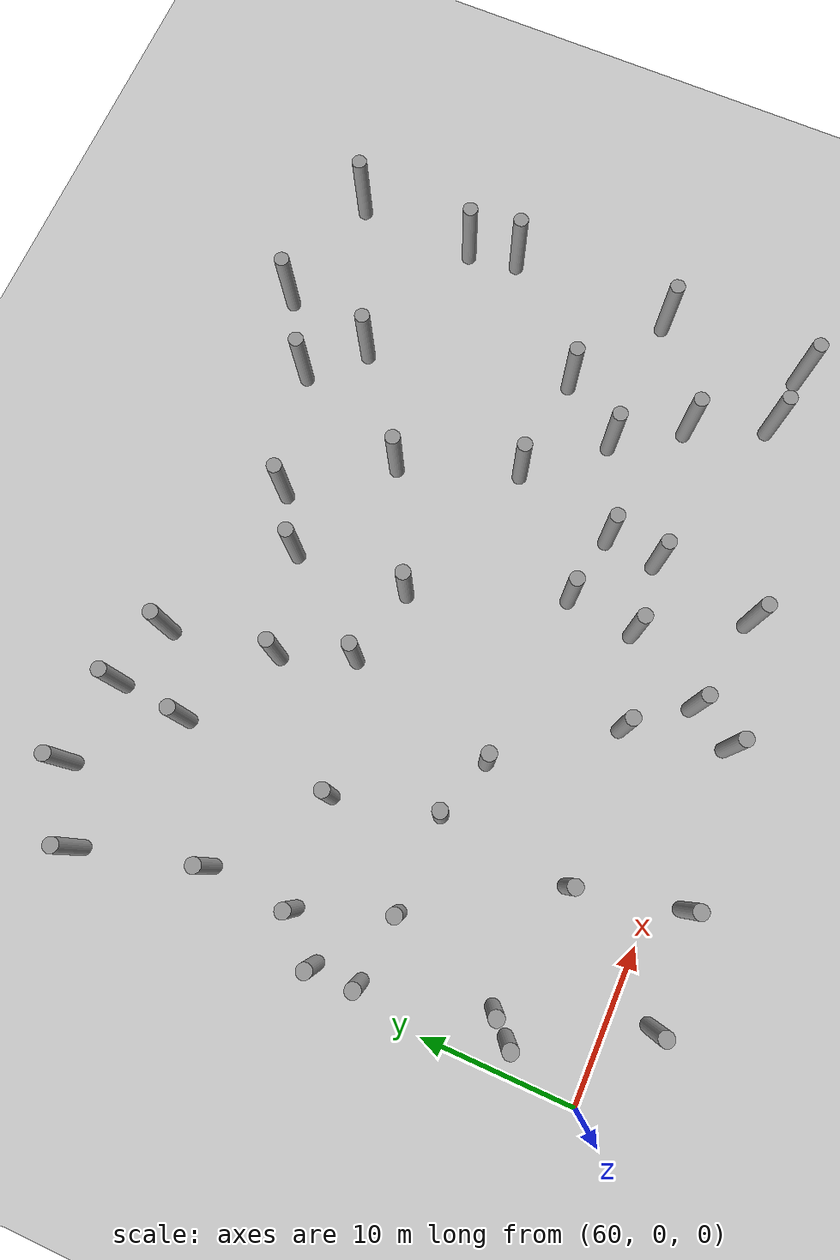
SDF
<sdf version="1.5">
 <world name="circle">
  <model name="ground">
   <static>1</static>
   <link name="link">
    <collision name="collision">
     <geometry><plane><normal>0 0 1</normal><size>100 100</size></plane></geometry>
     <surface><friction><ode><mu>100</mu><mu2>50</mu2></ode></friction></surface>
    </collision>
    <visual name="visual">
     <cast_shadows>0</cast_shadows>
     <geometry><plane><normal>0 0 1</normal><size>100 100</size></plane></geometry>
     <material>
      <script><uri>file://media/materials/scripts/gazebo.material</uri><name>Gazebo/Grey</name></script>
     </material>
    </visual>
    <velocity_decay><linear>0</linear><angular>0</angular></velocity_decay>
   </link>
  </model>
  <model name="unit_cylinder_91">
   <pose>62.0739486632 5.33810085154 3 3e-06 4e-06 -0</pose>
   <static>1</static>
   <self_collide>1</self_collide>
   <link name="link">
    <inertial>
     <mass>1</mass>
     <inertia><ixx>0.145833</ixx><ixy>0</ixy><ixz>0</ixz><iyy>0.145833</iyy><iyz>0</iyz><izz>0.125</izz></inertia>
    </inertial>
    <collision name="collision">
     <geometry><cylinder><radius>0.5</radius><length>6</length></cylinder></geometry>
    </collision>
    <visual name="visual">
     <geometry><cylinder><radius>0.5</radius><length>6</length></cylinder></geometry>
     <material>
      <script><name>Gazebo/Grey</name><uri>file://media/materials/scripts/gazebo.material</uri></script>
     </material>
    </visual>
    <collision name="cyl_collision">
     <geometry><cylinder><radius>0.5</radius><length>6</length></cylinder></geometry>
    </collision>
    <sensor name="my_contact" type="contact">
     <contact><collision>cyl_collision</collision></contact>
     <update_rate>5</update_rate>
    </sensor>
   </link>
  </model>
  <model name="unit_cylinder_92">
   <pose>61.5560781743 14.6359444511 3 3e-06 4e-06 -0</pose>
   <static>1</static>
   <self_collide>1</self_collide>
   <link name="link">
    <inertial>
     <mass>1</mass>
     <inertia><ixx>0.145833</ixx><ixy>0</ixy><ixz>0</ixz><iyy>0.145833</iyy><iyz>0</iyz><izz>0.125</izz></inertia>
    </inertial>
    <collision name="collision">
     <geometry><cylinder><radius>0.5</radius><length>6</length></cylinder></geometry>
    </collision>
    <visual name="visual">
     <geometry><cylinder><radius>0.5</radius><length>6</length></cylinder></geometry>
     <material>
      <script><name>Gazebo/Grey</name><uri>file://media/materials/scripts/gazebo.material</uri></script>
     </material>
    </visual>
    <collision name="cyl_collision">
     <geometry><cylinder><radius>0.5</radius><length>6</length></cylinder></geometry>
    </collision>
    <sensor name="my_contact" type="contact">
     <contact><collision>cyl_collision</collision></contact>
     <update_rate>5</update_rate>
    </sensor>
   </link>
  </model>
  <model name="unit_cylinder_93">
   <pose>61.432458719 17.5609494254 3 3e-06 4e-06 -0</pose>
   <static>1</static>
   <self_collide>1</self_collide>
   <link name="link">
    <inertial>
     <mass>1</mass>
     <inertia><ixx>0.145833</ixx><ixy>0</ixy><ixz>0</ixz><iyy>0.145833</iyy><iyz>0</iyz><izz>0.125</izz></inertia>
    </inertial>
    <collision name="collision">
     <geometry><cylinder><radius>0.5</radius><length>6</length></cylinder></geometry>
    </collision>
    <visual name="visual">
     <geometry><cylinder><radius>0.5</radius><length>6</length></cylinder></geometry>
     <material>
      <script><name>Gazebo/Grey</name><uri>file://media/materials/scripts/gazebo.material</uri></script>
     </material>
    </visual>
    <collision name="cyl_collision">
     <geometry><cylinder><radius>0.5</radius><length>6</length></cylinder></geometry>
    </collision>
    <sensor name="my_contact" type="contact">
     <contact><collision>cyl_collision</collision></contact>
     <update_rate>5</update_rate>
    </sensor>
   </link>
  </model>
  <model name="unit_cylinder_95">
   <pose>61.9481817668 33.8716641692 3 3e-06 4e-06 -0</pose>
   <static>1</static>
   <self_collide>1</self_collide>
   <link name="link">
    <inertial>
     <mass>1</mass>
     <inertia><ixx>0.145833</ixx><ixy>0</ixy><ixz>0</ixz><iyy>0.145833</iyy><iyz>0</iyz><izz>0.125</izz></inertia>
    </inertial>
    <collision name="collision">
     <geometry><cylinder><radius>0.5</radius><length>6</length></cylinder></geometry>
    </collision>
    <visual name="visual">
     <geometry><cylinder><radius>0.5</radius><length>6</length></cylinder></geometry>
     <material>
      <script><name>Gazebo/Grey</name><uri>file://media/materials/scripts/gazebo.material</uri></script>
     </material>
    </visual>
    <collision name="cyl_collision">
     <geometry><cylinder><radius>0.5</radius><length>6</length></cylinder></geometry>
    </collision>
    <sensor name="my_contact" type="contact">
     <contact><collision>cyl_collision</collision></contact>
     <update_rate>5</update_rate>
    </sensor>
   </link>
  </model>
  <model name="unit_cylinder_102">
   <pose>66.0610777973 -2.32905019856 3 3e-06 4e-06 -0</pose>
   <static>1</static>
   <self_collide>1</self_collide>
   <link name="link">
    <inertial>
     <mass>1</mass>
     <inertia><ixx>0.145833</ixx><ixy>0</ixy><ixz>0</ixz><iyy>0.145833</iyy><iyz>0</iyz><izz>0.125</izz></inertia>
    </inertial>
    <collision name="collision">
     <geometry><cylinder><radius>0.5</radius><length>6</length></cylinder></geometry>
    </collision>
    <visual name="visual">
     <geometry><cylinder><radius>0.5</radius><length>6</length></cylinder></geometry>
     <material>
      <script><name>Gazebo/Grey</name><uri>file://media/materials/scripts/gazebo.material</uri></script>
     </material>
    </visual>
    <collision name="cyl_collision">
     <geometry><cylinder><radius>0.5</radius><length>6</length></cylinder></geometry>
    </collision>
    <sensor name="my_contact" type="contact">
     <contact><collision>cyl_collision</collision></contact>
     <update_rate>5</update_rate>
    </sensor>
   </link>
  </model>
  <model name="unit_cylinder_103">
   <pose>63.3626656839 6.70911605019 3 3e-06 4e-06 -0</pose>
   <static>1</static>
   <self_collide>1</self_collide>
   <link name="link">
    <inertial>
     <mass>1</mass>
     <inertia><ixx>0.145833</ixx><ixy>0</ixy><ixz>0</ixz><iyy>0.145833</iyy><iyz>0</iyz><izz>0.125</izz></inertia>
    </inertial>
    <collision name="collision">
     <geometry><cylinder><radius>0.5</radius><length>6</length></cylinder></geometry>
    </collision>
    <visual name="visual">
     <geometry><cylinder><radius>0.5</radius><length>6</length></cylinder></geometry>
     <material>
      <script><name>Gazebo/Grey</name><uri>file://media/materials/scripts/gazebo.material</uri></script>
     </material>
    </visual>
    <collision name="cyl_collision">
     <geometry><cylinder><radius>0.5</radius><length>6</length></cylinder></geometry>
    </collision>
    <sensor name="my_contact" type="contact">
     <contact><collision>cyl_collision</collision></contact>
     <update_rate>5</update_rate>
    </sensor>
   </link>
  </model>
  <model name="unit_cylinder_104">
   <pose>66.1457224315 14.1314867641 3 3e-06 4e-06 -0</pose>
   <static>1</static>
   <self_collide>1</self_collide>
   <link name="link">
    <inertial>
     <mass>1</mass>
     <inertia><ixx>0.145833</ixx><ixy>0</ixy><ixz>0</ixz><iyy>0.145833</iyy><iyz>0</iyz><izz>0.125</izz></inertia>
    </inertial>
    <collision name="collision">
     <geometry><cylinder><radius>0.5</radius><length>6</length></cylinder></geometry>
    </collision>
    <visual name="visual">
     <geometry><cylinder><radius>0.5</radius><length>6</length></cylinder></geometry>
     <material>
      <script><name>Gazebo/Grey</name><uri>file://media/materials/scripts/gazebo.material</uri></script>
     </material>
    </visual>
    <collision name="cyl_collision">
     <geometry><cylinder><radius>0.5</radius><length>6</length></cylinder></geometry>
    </collision>
    <sensor name="my_contact" type="contact">
     <contact><collision>cyl_collision</collision></contact>
     <update_rate>5</update_rate>
    </sensor>
   </link>
  </model>
  <model name="unit_cylinder_105">
   <pose>63.896287241 20.0625460885 3 3e-06 4e-06 -0</pose>
   <static>1</static>
   <self_collide>1</self_collide>
   <link name="link">
    <inertial>
     <mass>1</mass>
     <inertia><ixx>0.145833</ixx><ixy>0</ixy><ixz>0</ixz><iyy>0.145833</iyy><iyz>0</iyz><izz>0.125</izz></inertia>
    </inertial>
    <collision name="collision">
     <geometry><cylinder><radius>0.5</radius><length>6</length></cylinder></geometry>
    </collision>
    <visual name="visual">
     <geometry><cylinder><radius>0.5</radius><length>6</length></cylinder></geometry>
     <material>
      <script><name>Gazebo/Grey</name><uri>file://media/materials/scripts/gazebo.material</uri></script>
     </material>
    </visual>
    <collision name="cyl_collision">
     <geometry><cylinder><radius>0.5</radius><length>6</length></cylinder></geometry>
    </collision>
    <sensor name="my_contact" type="contact">
     <contact><collision>cyl_collision</collision></contact>
     <update_rate>5</update_rate>
    </sensor>
   </link>
  </model>
  <model name="unit_cylinder_106">
   <pose>64.1471792892 25.840303079 3 3e-06 4e-06 -0</pose>
   <static>1</static>
   <self_collide>1</self_collide>
   <link name="link">
    <inertial>
     <mass>1</mass>
     <inertia><ixx>0.145833</ixx><ixy>0</ixy><ixz>0</ixz><iyy>0.145833</iyy><iyz>0</iyz><izz>0.125</izz></inertia>
    </inertial>
    <collision name="collision">
     <geometry><cylinder><radius>0.5</radius><length>6</length></cylinder></geometry>
    </collision>
    <visual name="visual">
     <geometry><cylinder><radius>0.5</radius><length>6</length></cylinder></geometry>
     <material>
      <script><name>Gazebo/Grey</name><uri>file://media/materials/scripts/gazebo.material</uri></script>
     </material>
    </visual>
    <collision name="cyl_collision">
     <geometry><cylinder><radius>0.5</radius><length>6</length></cylinder></geometry>
    </collision>
    <sensor name="my_contact" type="contact">
     <contact><collision>cyl_collision</collision></contact>
     <update_rate>5</update_rate>
    </sensor>
   </link>
  </model>
  <model name="unit_cylinder_107">
   <pose>66.4289884178 36.7921047272 3 3e-06 4e-06 -0</pose>
   <static>1</static>
   <self_collide>1</self_collide>
   <link name="link">
    <inertial>
     <mass>1</mass>
     <inertia><ixx>0.145833</ixx><ixy>0</ixy><ixz>0</ixz><iyy>0.145833</iyy><iyz>0</iyz><izz>0.125</izz></inertia>
    </inertial>
    <collision name="collision">
     <geometry><cylinder><radius>0.5</radius><length>6</length></cylinder></geometry>
    </collision>
    <visual name="visual">
     <geometry><cylinder><radius>0.5</radius><length>6</length></cylinder></geometry>
     <material>
      <script><name>Gazebo/Grey</name><uri>file://media/materials/scripts/gazebo.material</uri></script>
     </material>
    </visual>
    <collision name="cyl_collision">
     <geometry><cylinder><radius>0.5</radius><length>6</length></cylinder></geometry>
    </collision>
    <sensor name="my_contact" type="contact">
     <contact><collision>cyl_collision</collision></contact>
     <update_rate>5</update_rate>
    </sensor>
   </link>
  </model>
  <model name="unit_cylinder_114">
   <pose>73.1602903849 -1.77740981142 3 3e-06 4e-06 -0</pose>
   <static>1</static>
   <self_collide>1</self_collide>
   <link name="link">
    <inertial>
     <mass>1</mass>
     <inertia><ixx>0.145833</ixx><ixy>0</ixy><ixz>0</ixz><iyy>0.145833</iyy><iyz>0</iyz><izz>0.125</izz></inertia>
    </inertial>
    <collision name="collision">
     <geometry><cylinder><radius>0.5</radius><length>6</length></cylinder></geometry>
    </collision>
    <visual name="visual">
     <geometry><cylinder><radius>0.5</radius><length>6</length></cylinder></geometry>
     <material>
      <script><name>Gazebo/Grey</name><uri>file://media/materials/scripts/gazebo.material</uri></script>
     </material>
    </visual>
    <collision name="cyl_collision">
     <geometry><cylinder><radius>0.5</radius><length>6</length></cylinder></geometry>
    </collision>
    <sensor name="my_contact" type="contact">
     <contact><collision>cyl_collision</collision></contact>
     <update_rate>5</update_rate>
    </sensor>
   </link>
  </model>
  <model name="unit_cylinder_115">
   <pose>71.6428215142 5.27796759561 3 3e-06 4e-06 -0</pose>
   <static>1</static>
   <self_collide>1</self_collide>
   <link name="link">
    <inertial>
     <mass>1</mass>
     <inertia><ixx>0.145833</ixx><ixy>0</ixy><ixz>0</ixz><iyy>0.145833</iyy><iyz>0</iyz><izz>0.125</izz></inertia>
    </inertial>
    <collision name="collision">
     <geometry><cylinder><radius>0.5</radius><length>6</length></cylinder></geometry>
    </collision>
    <visual name="visual">
     <geometry><cylinder><radius>0.5</radius><length>6</length></cylinder></geometry>
     <material>
      <script><name>Gazebo/Grey</name><uri>file://media/materials/scripts/gazebo.material</uri></script>
     </material>
    </visual>
    <collision name="cyl_collision">
     <geometry><cylinder><radius>0.5</radius><length>6</length></cylinder></geometry>
    </collision>
    <sensor name="my_contact" type="contact">
     <contact><collision>cyl_collision</collision></contact>
     <update_rate>5</update_rate>
    </sensor>
   </link>
  </model>
  <model name="unit_cylinder_116">
   <pose>72.5387453592 14.0682765784 3 3e-06 4e-06 -0</pose>
   <static>1</static>
   <self_collide>1</self_collide>
   <link name="link">
    <inertial>
     <mass>1</mass>
     <inertia><ixx>0.145833</ixx><ixy>0</ixy><ixz>0</ixz><iyy>0.145833</iyy><iyz>0</iyz><izz>0.125</izz></inertia>
    </inertial>
    <collision name="collision">
     <geometry><cylinder><radius>0.5</radius><length>6</length></cylinder></geometry>
    </collision>
    <visual name="visual">
     <geometry><cylinder><radius>0.5</radius><length>6</length></cylinder></geometry>
     <material>
      <script><name>Gazebo/Grey</name><uri>file://media/materials/scripts/gazebo.material</uri></script>
     </material>
    </visual>
    <collision name="cyl_collision">
     <geometry><cylinder><radius>0.5</radius><length>6</length></cylinder></geometry>
    </collision>
    <sensor name="my_contact" type="contact">
     <contact><collision>cyl_collision</collision></contact>
     <update_rate>5</update_rate>
    </sensor>
   </link>
  </model>
  <model name="unit_cylinder_117">
   <pose>70.9271889235 20.8517003694 3 3e-06 4e-06 -0</pose>
   <static>1</static>
   <self_collide>1</self_collide>
   <link name="link">
    <inertial>
     <mass>1</mass>
     <inertia><ixx>0.145833</ixx><ixy>0</ixy><ixz>0</ixz><iyy>0.145833</iyy><iyz>0</iyz><izz>0.125</izz></inertia>
    </inertial>
    <collision name="collision">
     <geometry><cylinder><radius>0.5</radius><length>6</length></cylinder></geometry>
    </collision>
    <visual name="visual">
     <geometry><cylinder><radius>0.5</radius><length>6</length></cylinder></geometry>
     <material>
      <script><name>Gazebo/Grey</name><uri>file://media/materials/scripts/gazebo.material</uri></script>
     </material>
    </visual>
    <collision name="cyl_collision">
     <geometry><cylinder><radius>0.5</radius><length>6</length></cylinder></geometry>
    </collision>
    <sensor name="my_contact" type="contact">
     <contact><collision>cyl_collision</collision></contact>
     <update_rate>5</update_rate>
    </sensor>
   </link>
  </model>
  <model name="unit_cylinder_118">
   <pose>71.7306951496 31.3040778528 3 3e-06 4e-06 -0</pose>
   <static>1</static>
   <self_collide>1</self_collide>
   <link name="link">
    <inertial>
     <mass>1</mass>
     <inertia><ixx>0.145833</ixx><ixy>0</ixy><ixz>0</ixz><iyy>0.145833</iyy><iyz>0</iyz><izz>0.125</izz></inertia>
    </inertial>
    <collision name="collision">
     <geometry><cylinder><radius>0.5</radius><length>6</length></cylinder></geometry>
    </collision>
    <visual name="visual">
     <geometry><cylinder><radius>0.5</radius><length>6</length></cylinder></geometry>
     <material>
      <script><name>Gazebo/Grey</name><uri>file://media/materials/scripts/gazebo.material</uri></script>
     </material>
    </visual>
    <collision name="cyl_collision">
     <geometry><cylinder><radius>0.5</radius><length>6</length></cylinder></geometry>
    </collision>
    <sensor name="my_contact" type="contact">
     <contact><collision>cyl_collision</collision></contact>
     <update_rate>5</update_rate>
    </sensor>
   </link>
  </model>
  <model name="unit_cylinder_119">
   <pose>72.1649178916 36.1193566209 3 3e-06 4e-06 -0</pose>
   <static>1</static>
   <self_collide>1</self_collide>
   <link name="link">
    <inertial>
     <mass>1</mass>
     <inertia><ixx>0.145833</ixx><ixy>0</ixy><ixz>0</ixz><iyy>0.145833</iyy><iyz>0</iyz><izz>0.125</izz></inertia>
    </inertial>
    <collision name="collision">
     <geometry><cylinder><radius>0.5</radius><length>6</length></cylinder></geometry>
    </collision>
    <visual name="visual">
     <geometry><cylinder><radius>0.5</radius><length>6</length></cylinder></geometry>
     <material>
      <script><name>Gazebo/Grey</name><uri>file://media/materials/scripts/gazebo.material</uri></script>
     </material>
    </visual>
    <collision name="cyl_collision">
     <geometry><cylinder><radius>0.5</radius><length>6</length></cylinder></geometry>
    </collision>
    <sensor name="my_contact" type="contact">
     <contact><collision>cyl_collision</collision></contact>
     <update_rate>5</update_rate>
    </sensor>
   </link>
  </model>
  <model name="unit_cylinder_126">
   <pose>83.4338816202 -0.87176138724 3 3e-06 4e-06 -0</pose>
   <static>1</static>
   <self_collide>1</self_collide>
   <link name="link">
    <inertial>
     <mass>1</mass>
     <inertia><ixx>0.145833</ixx><ixy>0</ixy><ixz>0</ixz><iyy>0.145833</iyy><iyz>0</iyz><izz>0.125</izz></inertia>
    </inertial>
    <collision name="collision">
     <geometry><cylinder><radius>0.5</radius><length>6</length></cylinder></geometry>
    </collision>
    <visual name="visual">
     <geometry><cylinder><radius>0.5</radius><length>6</length></cylinder></geometry>
     <material>
      <script><name>Gazebo/Grey</name><uri>file://media/materials/scripts/gazebo.material</uri></script>
     </material>
    </visual>
    <collision name="cyl_collision">
     <geometry><cylinder><radius>0.5</radius><length>6</length></cylinder></geometry>
    </collision>
    <sensor name="my_contact" type="contact">
     <contact><collision>cyl_collision</collision></contact>
     <update_rate>5</update_rate>
    </sensor>
   </link>
  </model>
  <model name="unit_cylinder_127">
   <pose>81.9904492961 5.69962246221 3 3e-06 4e-06 -0</pose>
   <static>1</static>
   <self_collide>1</self_collide>
   <link name="link">
    <inertial>
     <mass>1</mass>
     <inertia><ixx>0.145833</ixx><ixy>0</ixy><ixz>0</ixz><iyy>0.145833</iyy><iyz>0</iyz><izz>0.125</izz></inertia>
    </inertial>
    <collision name="collision">
     <geometry><cylinder><radius>0.5</radius><length>6</length></cylinder></geometry>
    </collision>
    <visual name="visual">
     <geometry><cylinder><radius>0.5</radius><length>6</length></cylinder></geometry>
     <material>
      <script><name>Gazebo/Grey</name><uri>file://media/materials/scripts/gazebo.material</uri></script>
     </material>
    </visual>
    <collision name="cyl_collision">
     <geometry><cylinder><radius>0.5</radius><length>6</length></cylinder></geometry>
    </collision>
    <sensor name="my_contact" type="contact">
     <contact><collision>cyl_collision</collision></contact>
     <update_rate>5</update_rate>
    </sensor>
   </link>
  </model>
  <model name="unit_cylinder_128">
   <pose>76.7028206165 12.7197313785 3 3e-06 4e-06 -0</pose>
   <static>1</static>
   <self_collide>1</self_collide>
   <link name="link">
    <inertial>
     <mass>1</mass>
     <inertia><ixx>0.145833</ixx><ixy>0</ixy><ixz>0</ixz><iyy>0.145833</iyy><iyz>0</iyz><izz>0.125</izz></inertia>
    </inertial>
    <collision name="collision">
     <geometry><cylinder><radius>0.5</radius><length>6</length></cylinder></geometry>
    </collision>
    <visual name="visual">
     <geometry><cylinder><radius>0.5</radius><length>6</length></cylinder></geometry>
     <material>
      <script><name>Gazebo/Grey</name><uri>file://media/materials/scripts/gazebo.material</uri></script>
     </material>
    </visual>
    <collision name="cyl_collision">
     <geometry><cylinder><radius>0.5</radius><length>6</length></cylinder></geometry>
    </collision>
    <sensor name="my_contact" type="contact">
     <contact><collision>cyl_collision</collision></contact>
     <update_rate>5</update_rate>
    </sensor>
   </link>
  </model>
  <model name="unit_cylinder_129">
   <pose>79.4812826559 23.0179655852 3 3e-06 4e-06 -0</pose>
   <static>1</static>
   <self_collide>1</self_collide>
   <link name="link">
    <inertial>
     <mass>1</mass>
     <inertia><ixx>0.145833</ixx><ixy>0</ixy><ixz>0</ixz><iyy>0.145833</iyy><iyz>0</iyz><izz>0.125</izz></inertia>
    </inertial>
    <collision name="collision">
     <geometry><cylinder><radius>0.5</radius><length>6</length></cylinder></geometry>
    </collision>
    <visual name="visual">
     <geometry><cylinder><radius>0.5</radius><length>6</length></cylinder></geometry>
     <material>
      <script><name>Gazebo/Grey</name><uri>file://media/materials/scripts/gazebo.material</uri></script>
     </material>
    </visual>
    <collision name="cyl_collision">
     <geometry><cylinder><radius>0.5</radius><length>6</length></cylinder></geometry>
    </collision>
    <sensor name="my_contact" type="contact">
     <contact><collision>cyl_collision</collision></contact>
     <update_rate>5</update_rate>
    </sensor>
   </link>
  </model>
  <model name="unit_cylinder_130">
   <pose>77.7314166843 27.6928025117 3 3e-06 4e-06 -0</pose>
   <static>1</static>
   <self_collide>1</self_collide>
   <link name="link">
    <inertial>
     <mass>1</mass>
     <inertia><ixx>0.145833</ixx><ixy>0</ixy><ixz>0</ixz><iyy>0.145833</iyy><iyz>0</iyz><izz>0.125</izz></inertia>
    </inertial>
    <collision name="collision">
     <geometry><cylinder><radius>0.5</radius><length>6</length></cylinder></geometry>
    </collision>
    <visual name="visual">
     <geometry><cylinder><radius>0.5</radius><length>6</length></cylinder></geometry>
     <material>
      <script><name>Gazebo/Grey</name><uri>file://media/materials/scripts/gazebo.material</uri></script>
     </material>
    </visual>
    <collision name="cyl_collision">
     <geometry><cylinder><radius>0.5</radius><length>6</length></cylinder></geometry>
    </collision>
    <sensor name="my_contact" type="contact">
     <contact><collision>cyl_collision</collision></contact>
     <update_rate>5</update_rate>
    </sensor>
   </link>
  </model>
  <model name="unit_cylinder_131">
   <pose>76.5335999706 34.8875090233 3 3e-06 4e-06 -0</pose>
   <static>1</static>
   <self_collide>1</self_collide>
   <link name="link">
    <inertial>
     <mass>1</mass>
     <inertia><ixx>0.145833</ixx><ixy>0</ixy><ixz>0</ixz><iyy>0.145833</iyy><iyz>0</iyz><izz>0.125</izz></inertia>
    </inertial>
    <collision name="collision">
     <geometry><cylinder><radius>0.5</radius><length>6</length></cylinder></geometry>
    </collision>
    <visual name="visual">
     <geometry><cylinder><radius>0.5</radius><length>6</length></cylinder></geometry>
     <material>
      <script><name>Gazebo/Grey</name><uri>file://media/materials/scripts/gazebo.material</uri></script>
     </material>
    </visual>
    <collision name="cyl_collision">
     <geometry><cylinder><radius>0.5</radius><length>6</length></cylinder></geometry>
    </collision>
    <sensor name="my_contact" type="contact">
     <contact><collision>cyl_collision</collision></contact>
     <update_rate>5</update_rate>
    </sensor>
   </link>
  </model>
  <model name="unit_cylinder_138">
   <pose>85.0531737811 2.01897827651 3 3e-06 4e-06 -0</pose>
   <static>1</static>
   <self_collide>1</self_collide>
   <link name="link">
    <inertial>
     <mass>1</mass>
     <inertia><ixx>0.145833</ixx><ixy>0</ixy><ixz>0</ixz><iyy>0.145833</iyy><iyz>0</iyz><izz>0.125</izz></inertia>
    </inertial>
    <collision name="collision">
     <geometry><cylinder><radius>0.5</radius><length>6</length></cylinder></geometry>
    </collision>
    <visual name="visual">
     <geometry><cylinder><radius>0.5</radius><length>6</length></cylinder></geometry>
     <material>
      <script><name>Gazebo/Grey</name><uri>file://media/materials/scripts/gazebo.material</uri></script>
     </material>
    </visual>
    <collision name="cyl_collision">
     <geometry><cylinder><radius>0.5</radius><length>6</length></cylinder></geometry>
    </collision>
    <sensor name="my_contact" type="contact">
     <contact><collision>cyl_collision</collision></contact>
     <update_rate>5</update_rate>
    </sensor>
   </link>
  </model>
  <model name="unit_cylinder_139">
   <pose>88.0748383801 7.24297246957 3 3e-06 4e-06 -0</pose>
   <static>1</static>
   <self_collide>1</self_collide>
   <link name="link">
    <inertial>
     <mass>1</mass>
     <inertia><ixx>0.145833</ixx><ixy>0</ixy><ixz>0</ixz><iyy>0.145833</iyy><iyz>0</iyz><izz>0.125</izz></inertia>
    </inertial>
    <collision name="collision">
     <geometry><cylinder><radius>0.5</radius><length>6</length></cylinder></geometry>
    </collision>
    <visual name="visual">
     <geometry><cylinder><radius>0.5</radius><length>6</length></cylinder></geometry>
     <material>
      <script><name>Gazebo/Grey</name><uri>file://media/materials/scripts/gazebo.material</uri></script>
     </material>
    </visual>
    <collision name="cyl_collision">
     <geometry><cylinder><radius>0.5</radius><length>6</length></cylinder></geometry>
    </collision>
    <sensor name="my_contact" type="contact">
     <contact><collision>cyl_collision</collision></contact>
     <update_rate>5</update_rate>
    </sensor>
   </link>
  </model>
  <model name="unit_cylinder_140">
   <pose>88.6255633518 11.8855441214 3 3e-06 4e-06 -0</pose>
   <static>1</static>
   <self_collide>1</self_collide>
   <link name="link">
    <inertial>
     <mass>1</mass>
     <inertia><ixx>0.145833</ixx><ixy>0</ixy><ixz>0</ixz><iyy>0.145833</iyy><iyz>0</iyz><izz>0.125</izz></inertia>
    </inertial>
    <collision name="collision">
     <geometry><cylinder><radius>0.5</radius><length>6</length></cylinder></geometry>
    </collision>
    <visual name="visual">
     <geometry><cylinder><radius>0.5</radius><length>6</length></cylinder></geometry>
     <material>
      <script><name>Gazebo/Grey</name><uri>file://media/materials/scripts/gazebo.material</uri></script>
     </material>
    </visual>
    <collision name="cyl_collision">
     <geometry><cylinder><radius>0.5</radius><length>6</length></cylinder></geometry>
    </collision>
    <sensor name="my_contact" type="contact">
     <contact><collision>cyl_collision</collision></contact>
     <update_rate>5</update_rate>
    </sensor>
   </link>
  </model>
  <model name="unit_cylinder_141">
   <pose>84.8015720772 21.8278021756 3 3e-06 4e-06 -0</pose>
   <static>1</static>
   <self_collide>1</self_collide>
   <link name="link">
    <inertial>
     <mass>1</mass>
     <inertia><ixx>0.145833</ixx><ixy>0</ixy><ixz>0</ixz><iyy>0.145833</iyy><iyz>0</iyz><izz>0.125</izz></inertia>
    </inertial>
    <collision name="collision">
     <geometry><cylinder><radius>0.5</radius><length>6</length></cylinder></geometry>
    </collision>
    <visual name="visual">
     <geometry><cylinder><radius>0.5</radius><length>6</length></cylinder></geometry>
     <material>
      <script><name>Gazebo/Grey</name><uri>file://media/materials/scripts/gazebo.material</uri></script>
     </material>
    </visual>
    <collision name="cyl_collision">
     <geometry><cylinder><radius>0.5</radius><length>6</length></cylinder></geometry>
    </collision>
    <sensor name="my_contact" type="contact">
     <contact><collision>cyl_collision</collision></contact>
     <update_rate>5</update_rate>
    </sensor>
   </link>
  </model>
  <model name="unit_cylinder_142">
   <pose>84.4582404432 29.581830989 3 3e-06 4e-06 -0</pose>
   <static>1</static>
   <self_collide>1</self_collide>
   <link name="link">
    <inertial>
     <mass>1</mass>
     <inertia><ixx>0.145833</ixx><ixy>0</ixy><ixz>0</ixz><iyy>0.145833</iyy><iyz>0</iyz><izz>0.125</izz></inertia>
    </inertial>
    <collision name="collision">
     <geometry><cylinder><radius>0.5</radius><length>6</length></cylinder></geometry>
    </collision>
    <visual name="visual">
     <geometry><cylinder><radius>0.5</radius><length>6</length></cylinder></geometry>
     <material>
      <script><name>Gazebo/Grey</name><uri>file://media/materials/scripts/gazebo.material</uri></script>
     </material>
    </visual>
    <collision name="cyl_collision">
     <geometry><cylinder><radius>0.5</radius><length>6</length></cylinder></geometry>
    </collision>
    <sensor name="my_contact" type="contact">
     <contact><collision>cyl_collision</collision></contact>
     <update_rate>5</update_rate>
    </sensor>
   </link>
  </model>
  <model name="unit_cylinder_143">
   <pose>87.9756513296 32.0415950627 3 3e-06 4e-06 -0</pose>
   <static>1</static>
   <self_collide>1</self_collide>
   <link name="link">
    <inertial>
     <mass>1</mass>
     <inertia><ixx>0.145833</ixx><ixy>0</ixy><ixz>0</ixz><iyy>0.145833</iyy><iyz>0</iyz><izz>0.125</izz></inertia>
    </inertial>
    <collision name="collision">
     <geometry><cylinder><radius>0.5</radius><length>6</length></cylinder></geometry>
    </collision>
    <visual name="visual">
     <geometry><cylinder><radius>0.5</radius><length>6</length></cylinder></geometry>
     <material>
      <script><name>Gazebo/Grey</name><uri>file://media/materials/scripts/gazebo.material</uri></script>
     </material>
    </visual>
    <collision name="cyl_collision">
     <geometry><cylinder><radius>0.5</radius><length>6</length></cylinder></geometry>
    </collision>
    <sensor name="my_contact" type="contact">
     <contact><collision>cyl_collision</collision></contact>
     <update_rate>5</update_rate>
    </sensor>
   </link>
  </model>
  <model name="unit_cylinder_150">
   <pose>91.6800630087 0.586380976315 3 3e-06 4e-06 -0</pose>
   <static>1</static>
   <self_collide>1</self_collide>
   <link name="link">
    <inertial>
     <mass>1</mass>
     <inertia><ixx>0.145833</ixx><ixy>0</ixy><ixz>0</ixz><iyy>0.145833</iyy><iyz>0</iyz><izz>0.125</izz></inertia>
    </inertial>
    <collision name="collision">
     <geometry><cylinder><radius>0.5</radius><length>6</length></cylinder></geometry>
    </collision>
    <visual name="visual">
     <geometry><cylinder><radius>0.5</radius><length>6</length></cylinder></geometry>
     <material>
      <script><name>Gazebo/Grey</name><uri>file://media/materials/scripts/gazebo.material</uri></script>
     </material>
    </visual>
    <collision name="cyl_collision">
     <geometry><cylinder><radius>0.5</radius><length>6</length></cylinder></geometry>
    </collision>
    <sensor name="my_contact" type="contact">
     <contact><collision>cyl_collision</collision></contact>
     <update_rate>5</update_rate>
    </sensor>
   </link>
  </model>
  <model name="unit_cylinder_151">
   <pose>93.0436508442 7.5511929484 3 3e-06 4e-06 -0</pose>
   <static>1</static>
   <self_collide>1</self_collide>
   <link name="link">
    <inertial>
     <mass>1</mass>
     <inertia><ixx>0.145833</ixx><ixy>0</ixy><ixz>0</ixz><iyy>0.145833</iyy><iyz>0</iyz><izz>0.125</izz></inertia>
    </inertial>
    <collision name="collision">
     <geometry><cylinder><radius>0.5</radius><length>6</length></cylinder></geometry>
    </collision>
    <visual name="visual">
     <geometry><cylinder><radius>0.5</radius><length>6</length></cylinder></geometry>
     <material>
      <script><name>Gazebo/Grey</name><uri>file://media/materials/scripts/gazebo.material</uri></script>
     </material>
    </visual>
    <collision name="cyl_collision">
     <geometry><cylinder><radius>0.5</radius><length>6</length></cylinder></geometry>
    </collision>
    <sensor name="my_contact" type="contact">
     <contact><collision>cyl_collision</collision></contact>
     <update_rate>5</update_rate>
    </sensor>
   </link>
  </model>
  <model name="unit_cylinder_152">
   <pose>93.3881599831 11.0714645897 3 3e-06 4e-06 -0</pose>
   <static>1</static>
   <self_collide>1</self_collide>
   <link name="link">
    <inertial>
     <mass>1</mass>
     <inertia><ixx>0.145833</ixx><ixy>0</ixy><ixz>0</ixz><iyy>0.145833</iyy><iyz>0</iyz><izz>0.125</izz></inertia>
    </inertial>
    <collision name="collision">
     <geometry><cylinder><radius>0.5</radius><length>6</length></cylinder></geometry>
    </collision>
    <visual name="visual">
     <geometry><cylinder><radius>0.5</radius><length>6</length></cylinder></geometry>
     <material>
      <script><name>Gazebo/Grey</name><uri>file://media/materials/scripts/gazebo.material</uri></script>
     </material>
    </visual>
    <collision name="cyl_collision">
     <geometry><cylinder><radius>0.5</radius><length>6</length></cylinder></geometry>
    </collision>
    <sensor name="my_contact" type="contact">
     <contact><collision>cyl_collision</collision></contact>
     <update_rate>5</update_rate>
    </sensor>
   </link>
  </model>
  <model name="unit_cylinder_153">
   <pose>95.4701806106 18.1295545116 3 3e-06 4e-06 -0</pose>
   <static>1</static>
   <self_collide>1</self_collide>
   <link name="link">
    <inertial>
     <mass>1</mass>
     <inertia><ixx>0.145833</ixx><ixy>0</ixy><ixz>0</ixz><iyy>0.145833</iyy><iyz>0</iyz><izz>0.125</izz></inertia>
    </inertial>
    <collision name="collision">
     <geometry><cylinder><radius>0.5</radius><length>6</length></cylinder></geometry>
    </collision>
    <visual name="visual">
     <geometry><cylinder><radius>0.5</radius><length>6</length></cylinder></geometry>
     <material>
      <script><name>Gazebo/Grey</name><uri>file://media/materials/scripts/gazebo.material</uri></script>
     </material>
    </visual>
    <collision name="cyl_collision">
     <geometry><cylinder><radius>0.5</radius><length>6</length></cylinder></geometry>
    </collision>
    <sensor name="my_contact" type="contact">
     <contact><collision>cyl_collision</collision></contact>
     <update_rate>5</update_rate>
    </sensor>
   </link>
  </model>
  <model name="unit_cylinder_154">
   <pose>92.6448180383 25.9881389108 3 3e-06 4e-06 -0</pose>
   <static>1</static>
   <self_collide>1</self_collide>
   <link name="link">
    <inertial>
     <mass>1</mass>
     <inertia><ixx>0.145833</ixx><ixy>0</ixy><ixz>0</ixz><iyy>0.145833</iyy><iyz>0</iyz><izz>0.125</izz></inertia>
    </inertial>
    <collision name="collision">
     <geometry><cylinder><radius>0.5</radius><length>6</length></cylinder></geometry>
    </collision>
    <visual name="visual">
     <geometry><cylinder><radius>0.5</radius><length>6</length></cylinder></geometry>
     <material>
      <script><name>Gazebo/Grey</name><uri>file://media/materials/scripts/gazebo.material</uri></script>
     </material>
    </visual>
    <collision name="cyl_collision">
     <geometry><cylinder><radius>0.5</radius><length>6</length></cylinder></geometry>
    </collision>
    <sensor name="my_contact" type="contact">
     <contact><collision>cyl_collision</collision></contact>
     <update_rate>5</update_rate>
    </sensor>
   </link>
  </model>
  <model name="unit_cylinder_155">
   <pose>96.3656527469 34.4711664489 3 3e-06 4e-06 -0</pose>
   <static>1</static>
   <self_collide>1</self_collide>
   <link name="link">
    <inertial>
     <mass>1</mass>
     <inertia><ixx>0.145833</ixx><ixy>0</ixy><ixz>0</ixz><iyy>0.145833</iyy><iyz>0</iyz><izz>0.125</izz></inertia>
    </inertial>
    <collision name="collision">
     <geometry><cylinder><radius>0.5</radius><length>6</length></cylinder></geometry>
    </collision>
    <visual name="visual">
     <geometry><cylinder><radius>0.5</radius><length>6</length></cylinder></geometry>
     <material>
      <script><name>Gazebo/Grey</name><uri>file://media/materials/scripts/gazebo.material</uri></script>
     </material>
    </visual>
    <collision name="cyl_collision">
     <geometry><cylinder><radius>0.5</radius><length>6</length></cylinder></geometry>
    </collision>
    <sensor name="my_contact" type="contact">
     <contact><collision>cyl_collision</collision></contact>
     <update_rate>5</update_rate>
    </sensor>
   </link>
  </model>
  <model name="unit_cylinder_163">
   <pose>102.72513353 8.95363633406 3 3e-06 4e-06 -0</pose>
   <static>1</static>
   <self_collide>1</self_collide>
   <link name="link">
    <inertial>
     <mass>1</mass>
     <inertia><ixx>0.145833</ixx><ixy>0</ixy><ixz>0</ixz><iyy>0.145833</iyy><iyz>0</iyz><izz>0.125</izz></inertia>
    </inertial>
    <collision name="collision">
     <geometry><cylinder><radius>0.5</radius><length>6</length></cylinder></geometry>
    </collision>
    <visual name="visual">
     <geometry><cylinder><radius>0.5</radius><length>6</length></cylinder></geometry>
     <material>
      <script><name>Gazebo/Grey</name><uri>file://media/materials/scripts/gazebo.material</uri></script>
     </material>
    </visual>
    <collision name="cyl_collision">
     <geometry><cylinder><radius>0.5</radius><length>6</length></cylinder></geometry>
    </collision>
    <sensor name="my_contact" type="contact">
     <contact><collision>cyl_collision</collision></contact>
     <update_rate>5</update_rate>
    </sensor>
   </link>
  </model>
  <model name="unit_cylinder_164">
   <pose>99.7690029097 13.3584957123 3 3e-06 4e-06 -0</pose>
   <static>1</static>
   <self_collide>1</self_collide>
   <link name="link">
    <inertial>
     <mass>1</mass>
     <inertia><ixx>0.145833</ixx><ixy>0</ixy><ixz>0</ixz><iyy>0.145833</iyy><iyz>0</iyz><izz>0.125</izz></inertia>
    </inertial>
    <collision name="collision">
     <geometry><cylinder><radius>0.5</radius><length>6</length></cylinder></geometry>
    </collision>
    <visual name="visual">
     <geometry><cylinder><radius>0.5</radius><length>6</length></cylinder></geometry>
     <material>
      <script><name>Gazebo/Grey</name><uri>file://media/materials/scripts/gazebo.material</uri></script>
     </material>
    </visual>
    <collision name="cyl_collision">
     <geometry><cylinder><radius>0.5</radius><length>6</length></cylinder></geometry>
    </collision>
    <sensor name="my_contact" type="contact">
     <contact><collision>cyl_collision</collision></contact>
     <update_rate>5</update_rate>
    </sensor>
   </link>
  </model>
  <model name="unit_cylinder_165">
   <pose>102.8931837 17.5130204523 3 3e-06 4e-06 -0</pose>
   <static>1</static>
   <self_collide>1</self_collide>
   <link name="link">
    <inertial>
     <mass>1</mass>
     <inertia><ixx>0.145833</ixx><ixy>0</ixy><ixz>0</ixz><iyy>0.145833</iyy><iyz>0</iyz><izz>0.125</izz></inertia>
    </inertial>
    <collision name="collision">
     <geometry><cylinder><radius>0.5</radius><length>6</length></cylinder></geometry>
    </collision>
    <visual name="visual">
     <geometry><cylinder><radius>0.5</radius><length>6</length></cylinder></geometry>
     <material>
      <script><name>Gazebo/Grey</name><uri>file://media/materials/scripts/gazebo.material</uri></script>
     </material>
    </visual>
    <collision name="cyl_collision">
     <geometry><cylinder><radius>0.5</radius><length>6</length></cylinder></geometry>
    </collision>
    <sensor name="my_contact" type="contact">
     <contact><collision>cyl_collision</collision></contact>
     <update_rate>5</update_rate>
    </sensor>
   </link>
  </model>
  <model name="unit_cylinder_166">
   <pose>99.5752639945 31.2358524043 3 3e-06 4e-06 -0</pose>
   <static>1</static>
   <self_collide>1</self_collide>
   <link name="link">
    <inertial>
     <mass>1</mass>
     <inertia><ixx>0.145833</ixx><ixy>0</ixy><ixz>0</ixz><iyy>0.145833</iyy><iyz>0</iyz><izz>0.125</izz></inertia>
    </inertial>
    <collision name="collision">
     <geometry><cylinder><radius>0.5</radius><length>6</length></cylinder></geometry>
    </collision>
    <visual name="visual">
     <geometry><cylinder><radius>0.5</radius><length>6</length></cylinder></geometry>
     <material>
      <script><name>Gazebo/Grey</name><uri>file://media/materials/scripts/gazebo.material</uri></script>
     </material>
    </visual>
    <collision name="cyl_collision">
     <geometry><cylinder><radius>0.5</radius><length>6</length></cylinder></geometry>
    </collision>
    <sensor name="my_contact" type="contact">
     <contact><collision>cyl_collision</collision></contact>
     <update_rate>5</update_rate>
    </sensor>
   </link>
  </model>
  <model name="unit_cylinder_167">
   <pose>101.229276495 37.7875971921 3 3e-06 4e-06 -0</pose>
   <static>1</static>
   <self_collide>1</self_collide>
   <link name="link">
    <inertial>
     <mass>1</mass>
     <inertia><ixx>0.145833</ixx><ixy>0</ixy><ixz>0</ixz><iyy>0.145833</iyy><iyz>0</iyz><izz>0.125</izz></inertia>
    </inertial>
    <collision name="collision">
     <geometry><cylinder><radius>0.5</radius><length>6</length></cylinder></geometry>
    </collision>
    <visual name="visual">
     <geometry><cylinder><radius>0.5</radius><length>6</length></cylinder></geometry>
     <material>
      <script><name>Gazebo/Grey</name><uri>file://media/materials/scripts/gazebo.material</uri></script>
     </material>
    </visual>
    <collision name="cyl_collision">
     <geometry><cylinder><radius>0.5</radius><length>6</length></cylinder></geometry>
    </collision>
    <sensor name="my_contact" type="contact">
     <contact><collision>cyl_collision</collision></contact>
     <update_rate>5</update_rate>
    </sensor>
   </link>
  </model>
  <model name="unit_cylinder_174">
   <pose>109.306100726 3.18491840912 3 3e-06 4e-06 -0</pose>
   <static>1</static>
   <self_collide>1</self_collide>
   <link name="link">
    <inertial>
     <mass>1</mass>
     <inertia><ixx>0.145833</ixx><ixy>0</ixy><ixz>0</ixz><iyy>0.145833</iyy><iyz>0</iyz><izz>0.125</izz></inertia>
    </inertial>
    <collision name="collision">
     <geometry><cylinder><radius>0.5</radius><length>6</length></cylinder></geometry>
    </collision>
    <visual name="visual">
     <geometry><cylinder><radius>0.5</radius><length>6</length></cylinder></geometry>
     <material>
      <script><name>Gazebo/Grey</name><uri>file://media/materials/scripts/gazebo.material</uri></script>
     </material>
    </visual>
    <collision name="cyl_collision">
     <geometry><cylinder><radius>0.5</radius><length>6</length></cylinder></geometry>
    </collision>
    <sensor name="my_contact" type="contact">
     <contact><collision>cyl_collision</collision></contact>
     <update_rate>5</update_rate>
    </sensor>
   </link>
  </model>
  <model name="unit_cylinder_175">
   <pose>105.057690038 3.79322550418 3 3e-06 4e-06 -0</pose>
   <static>1</static>
   <self_collide>1</self_collide>
   <link name="link">
    <inertial>
     <mass>1</mass>
     <inertia><ixx>0.145833</ixx><ixy>0</ixy><ixz>0</ixz><iyy>0.145833</iyy><iyz>0</iyz><izz>0.125</izz></inertia>
    </inertial>
    <collision name="collision">
     <geometry><cylinder><radius>0.5</radius><length>6</length></cylinder></geometry>
    </collision>
    <visual name="visual">
     <geometry><cylinder><radius>0.5</radius><length>6</length></cylinder></geometry>
     <material>
      <script><name>Gazebo/Grey</name><uri>file://media/materials/scripts/gazebo.material</uri></script>
     </material>
    </visual>
    <collision name="cyl_collision">
     <geometry><cylinder><radius>0.5</radius><length>6</length></cylinder></geometry>
    </collision>
    <sensor name="my_contact" type="contact">
     <contact><collision>cyl_collision</collision></contact>
     <update_rate>5</update_rate>
    </sensor>
   </link>
  </model>
  <model name="unit_cylinder_176">
   <pose>109.606423023 13.107639523 3 3e-06 4e-06 -0</pose>
   <static>1</static>
   <self_collide>1</self_collide>
   <link name="link">
    <inertial>
     <mass>1</mass>
     <inertia><ixx>0.145833</ixx><ixy>0</ixy><ixz>0</ixz><iyy>0.145833</iyy><iyz>0</iyz><izz>0.125</izz></inertia>
    </inertial>
    <collision name="collision">
     <geometry><cylinder><radius>0.5</radius><length>6</length></cylinder></geometry>
    </collision>
    <visual name="visual">
     <geometry><cylinder><radius>0.5</radius><length>6</length></cylinder></geometry>
     <material>
      <script><name>Gazebo/Grey</name><uri>file://media/materials/scripts/gazebo.material</uri></script>
     </material>
    </visual>
    <collision name="cyl_collision">
     <geometry><cylinder><radius>0.5</radius><length>6</length></cylinder></geometry>
    </collision>
    <sensor name="my_contact" type="contact">
     <contact><collision>cyl_collision</collision></contact>
     <update_rate>5</update_rate>
    </sensor>
   </link>
  </model>
  <model name="unit_cylinder_177">
   <pose>110.117351603 24.3887363444 3 3e-06 4e-06 -0</pose>
   <static>1</static>
   <self_collide>1</self_collide>
   <link name="link">
    <inertial>
     <mass>1</mass>
     <inertia><ixx>0.145833</ixx><ixy>0</ixy><ixz>0</ixz><iyy>0.145833</iyy><iyz>0</iyz><izz>0.125</izz></inertia>
    </inertial>
    <collision name="collision">
     <geometry><cylinder><radius>0.5</radius><length>6</length></cylinder></geometry>
    </collision>
    <visual name="visual">
     <geometry><cylinder><radius>0.5</radius><length>6</length></cylinder></geometry>
     <material>
      <script><name>Gazebo/Grey</name><uri>file://media/materials/scripts/gazebo.material</uri></script>
     </material>
    </visual>
    <collision name="cyl_collision">
     <geometry><cylinder><radius>0.5</radius><length>6</length></cylinder></geometry>
    </collision>
    <sensor name="my_contact" type="contact">
     <contact><collision>cyl_collision</collision></contact>
     <update_rate>5</update_rate>
    </sensor>
   </link>
  </model>
  <model name="unit_cylinder_178">
   <pose>109.541830498 27.8035693394 3 3e-06 4e-06 -0</pose>
   <static>1</static>
   <self_collide>1</self_collide>
   <link name="link">
    <inertial>
     <mass>1</mass>
     <inertia><ixx>0.145833</ixx><ixy>0</ixy><ixz>0</ixz><iyy>0.145833</iyy><iyz>0</iyz><izz>0.125</izz></inertia>
    </inertial>
    <collision name="collision">
     <geometry><cylinder><radius>0.5</radius><length>6</length></cylinder></geometry>
    </collision>
    <visual name="visual">
     <geometry><cylinder><radius>0.5</radius><length>6</length></cylinder></geometry>
     <material>
      <script><name>Gazebo/Grey</name><uri>file://media/materials/scripts/gazebo.material</uri></script>
     </material>
    </visual>
    <collision name="cyl_collision">
     <geometry><cylinder><radius>0.5</radius><length>6</length></cylinder></geometry>
    </collision>
    <sensor name="my_contact" type="contact">
     <contact><collision>cyl_collision</collision></contact>
     <update_rate>5</update_rate>
    </sensor>
   </link>
  </model>
  <model name="unit_cylinder_179">
   <pose>109.927956979 36.102807713 3 3e-06 4e-06 -0</pose>
   <static>1</static>
   <self_collide>1</self_collide>
   <link name="link">
    <inertial>
     <mass>1</mass>
     <inertia><ixx>0.145833</ixx><ixy>0</ixy><ixz>0</ixz><iyy>0.145833</iyy><iyz>0</iyz><izz>0.125</izz></inertia>
    </inertial>
    <collision name="collision">
     <geometry><cylinder><radius>0.5</radius><length>6</length></cylinder></geometry>
    </collision>
    <visual name="visual">
     <geometry><cylinder><radius>0.5</radius><length>6</length></cylinder></geometry>
     <material>
      <script><name>Gazebo/Grey</name><uri>file://media/materials/scripts/gazebo.material</uri></script>
     </material>
    </visual>
    <collision name="cyl_collision">
     <geometry><cylinder><radius>0.5</radius><length>6</length></cylinder></geometry>
    </collision>
    <sensor name="my_contact" type="contact">
     <contact><collision>cyl_collision</collision></contact>
     <update_rate>5</update_rate>
    </sensor>
   </link>
  </model>
 </world>
</sdf>
